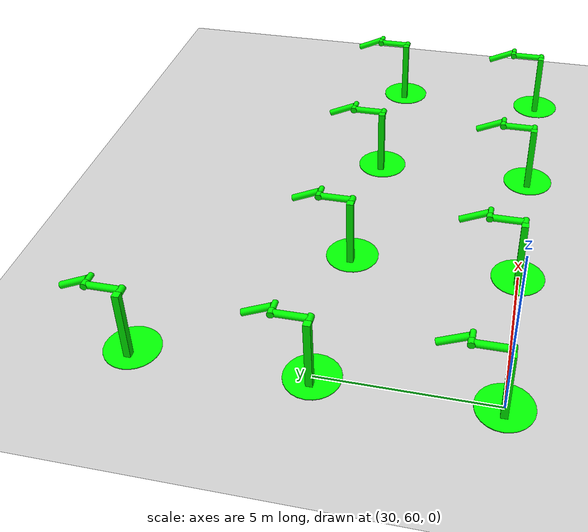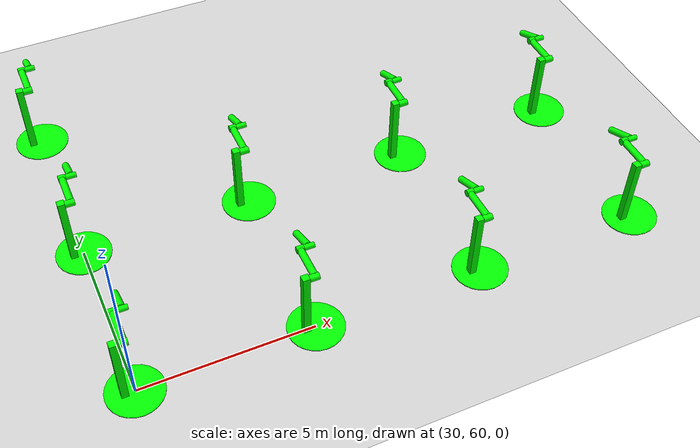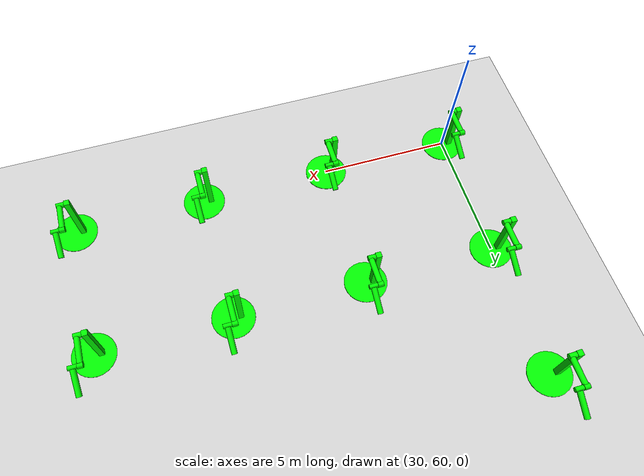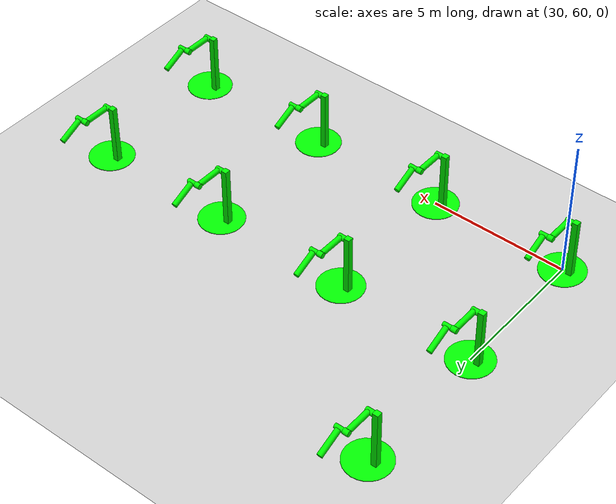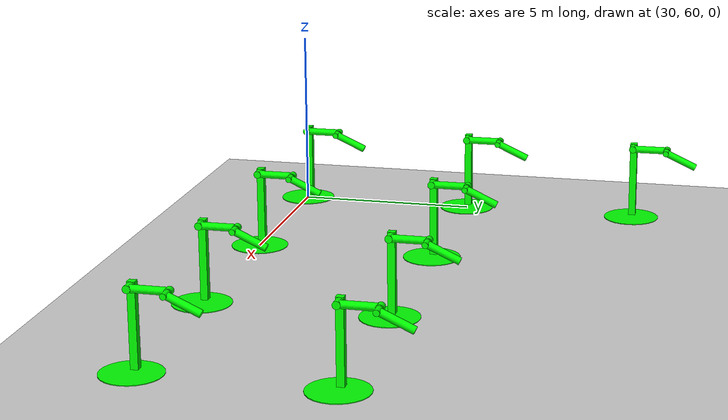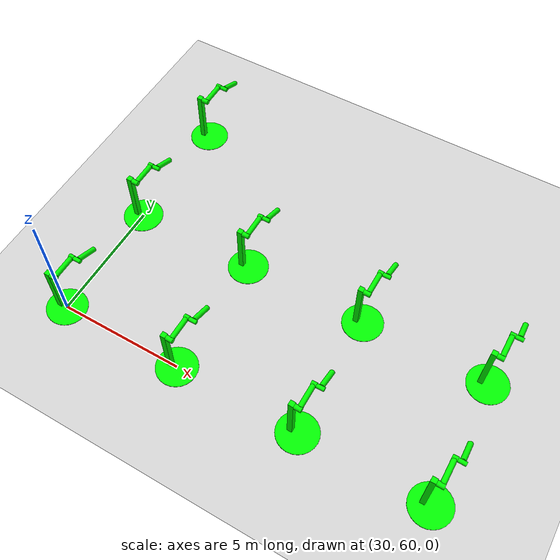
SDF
<sdf version="1.6">
 <world name="double_pendulums">
  <model name="ground_plane">
   <static>true</static>
   <link name="link">
    <collision name="collision">
     <geometry><plane><normal>0 0 1</normal><size>100 100</size></plane></geometry>
    </collision>
    <visual name="visual">
     <geometry><plane><normal>0 0 1</normal><size>100 100</size></plane></geometry>
     <material>
      <ambient>0.8 0.8 0.8 1</ambient>
      <diffuse>0.8 0.8 0.8 1</diffuse>
      <specular>0.8 0.8 0.8 1</specular>
     </material>
    </visual>
   </link>
  </model>
  <model name="dbl_pendulum_316">
   <pose>30 60 0 0 0 0</pose>
   <link name="base">
    <inertial><mass>100</mass></inertial>
    <visual name="vis_plate_on_ground">
     <pose>0 0 0.01 0 0 0</pose>
     <geometry><cylinder><radius>0.8</radius><length>0.02</length></cylinder></geometry>
     <material><ambient>0 1 0 1</ambient><diffuse>0 1 0 1</diffuse><specular>0 1 0 1</specular></material>
    </visual>
    <visual name="vis_pole">
     <pose>-0.275 0 1.1 0 0 0</pose>
     <geometry><box><size>0.2 0.2 2.2</size></box></geometry>
     <material><ambient>0 1 0 1</ambient><diffuse>0 1 0 1</diffuse><specular>0 1 0 1</specular></material>
    </visual>
    <collision name="col_plate_on_ground">
     <pose>0 0 0.01 0 0 0</pose>
     <geometry><cylinder><radius>0.8</radius><length>0.02</length></cylinder></geometry>
    </collision>
    <collision name="col_pole">
     <pose>-0.275 0 1.1 0 0 0</pose>
     <geometry><box><size>0.2 0.2 2.2</size></box></geometry>
    </collision>
   </link>
   <link name="upper_link">
    <pose>0 0 2.1 -1.5708 0 0</pose>
    <inertial><pose>0 0 0.5 0 0 0</pose></inertial>
    <visual name="vis_upper_joint">
     <pose>-0.05 0 0 0 1.5708 0</pose>
     <geometry><cylinder><radius>0.1</radius><length>0.3</length></cylinder></geometry>
     <material><ambient>0 1 0 1</ambient><diffuse>0 1 0 1</diffuse><specular>0 1 0 1</specular></material>
    </visual>
    <visual name="vis_lower_joint">
     <pose>0 0 1.0 0 1.5708 0</pose>
     <geometry><cylinder><radius>0.1</radius><length>0.2</length></cylinder></geometry>
     <material><ambient>0 1 0 1</ambient><diffuse>0 1 0 1</diffuse><specular>0 1 0 1</specular></material>
    </visual>
    <visual name="vis_cylinder">
     <pose>0 0 0.5 0 0 0</pose>
     <geometry><cylinder><radius>0.1</radius><length>0.9</length></cylinder></geometry>
     <material><ambient>0 1 0 1</ambient><diffuse>0 1 0 1</diffuse><specular>0 1 0 1</specular></material>
    </visual>
    <collision name="col_upper_joint">
     <pose>-0.05 0 0 0 1.5708 0</pose>
     <geometry><cylinder><radius>0.1</radius><length>0.3</length></cylinder></geometry>
    </collision>
    <collision name="col_lower_joint">
     <pose>0 0 1.0 0 1.5708 0</pose>
     <geometry><cylinder><radius>0.1</radius><length>0.2</length></cylinder></geometry>
    </collision>
    <collision name="col_cylinder">
     <pose>0 0 0.5 0 0 0</pose>
     <geometry><cylinder><radius>0.1</radius><length>0.9</length></cylinder></geometry>
    </collision>
   </link>
   <link name="lower_link">
    <pose>0.25 1.0 2.1 -2 0 0</pose>
    <inertial><pose>0 0 0.5 0 0 0</pose></inertial>
    <visual name="vis_lower_joint">
     <pose>0 0 0 0 1.5708 0</pose>
     <geometry><cylinder><radius>0.08</radius><length>0.3</length></cylinder></geometry>
     <material><ambient>0 1 0 1</ambient><diffuse>0 1 0 1</diffuse><specular>0 1 0 1</specular></material>
    </visual>
    <visual name="vis_cylinder">
     <pose>0 0 0.5 0 0 0</pose>
     <geometry><cylinder><radius>0.1</radius><length>0.9</length></cylinder></geometry>
     <material><ambient>0 1 0 1</ambient><diffuse>0 1 0 1</diffuse><specular>0 1 0 1</specular></material>
    </visual>
    <collision name="col_lower_joint">
     <pose>0 0 0 0 1.5708 0</pose>
     <geometry><cylinder><radius>0.08</radius><length>0.3</length></cylinder></geometry>
    </collision>
    <collision name="col_cylinder">
     <pose>0 0 0.5 0 0 0</pose>
     <geometry><cylinder><radius>0.1</radius><length>0.9</length></cylinder></geometry>
    </collision>
   </link>
   <joint name="upper_joint" type="revolute">
    <parent>base</parent>
    <child>upper_link</child>
    <axis><xyz>1.0 0 0</xyz></axis>
   </joint>
   <joint name="lower_joint" type="revolute">
    <parent>upper_link</parent>
    <child>lower_link</child>
    <axis><xyz>1.0 0 0</xyz></axis>
   </joint>
  </model>
  <model name="dbl_pendulum_317">
   <pose>35 60 0 0 0 0</pose>
   <link name="base">
    <inertial><mass>100</mass></inertial>
    <visual name="vis_plate_on_ground">
     <pose>0 0 0.01 0 0 0</pose>
     <geometry><cylinder><radius>0.8</radius><length>0.02</length></cylinder></geometry>
     <material><ambient>0 1 0 1</ambient><diffuse>0 1 0 1</diffuse><specular>0 1 0 1</specular></material>
    </visual>
    <visual name="vis_pole">
     <pose>-0.275 0 1.1 0 0 0</pose>
     <geometry><box><size>0.2 0.2 2.2</size></box></geometry>
     <material><ambient>0 1 0 1</ambient><diffuse>0 1 0 1</diffuse><specular>0 1 0 1</specular></material>
    </visual>
    <collision name="col_plate_on_ground">
     <pose>0 0 0.01 0 0 0</pose>
     <geometry><cylinder><radius>0.8</radius><length>0.02</length></cylinder></geometry>
    </collision>
    <collision name="col_pole">
     <pose>-0.275 0 1.1 0 0 0</pose>
     <geometry><box><size>0.2 0.2 2.2</size></box></geometry>
    </collision>
   </link>
   <link name="upper_link">
    <pose>0 0 2.1 -1.5708 0 0</pose>
    <inertial><pose>0 0 0.5 0 0 0</pose></inertial>
    <visual name="vis_upper_joint">
     <pose>-0.05 0 0 0 1.5708 0</pose>
     <geometry><cylinder><radius>0.1</radius><length>0.3</length></cylinder></geometry>
     <material><ambient>0 1 0 1</ambient><diffuse>0 1 0 1</diffuse><specular>0 1 0 1</specular></material>
    </visual>
    <visual name="vis_lower_joint">
     <pose>0 0 1.0 0 1.5708 0</pose>
     <geometry><cylinder><radius>0.1</radius><length>0.2</length></cylinder></geometry>
     <material><ambient>0 1 0 1</ambient><diffuse>0 1 0 1</diffuse><specular>0 1 0 1</specular></material>
    </visual>
    <visual name="vis_cylinder">
     <pose>0 0 0.5 0 0 0</pose>
     <geometry><cylinder><radius>0.1</radius><length>0.9</length></cylinder></geometry>
     <material><ambient>0 1 0 1</ambient><diffuse>0 1 0 1</diffuse><specular>0 1 0 1</specular></material>
    </visual>
    <collision name="col_upper_joint">
     <pose>-0.05 0 0 0 1.5708 0</pose>
     <geometry><cylinder><radius>0.1</radius><length>0.3</length></cylinder></geometry>
    </collision>
    <collision name="col_lower_joint">
     <pose>0 0 1.0 0 1.5708 0</pose>
     <geometry><cylinder><radius>0.1</radius><length>0.2</length></cylinder></geometry>
    </collision>
    <collision name="col_cylinder">
     <pose>0 0 0.5 0 0 0</pose>
     <geometry><cylinder><radius>0.1</radius><length>0.9</length></cylinder></geometry>
    </collision>
   </link>
   <link name="lower_link">
    <pose>0.25 1.0 2.1 -2 0 0</pose>
    <inertial><pose>0 0 0.5 0 0 0</pose></inertial>
    <visual name="vis_lower_joint">
     <pose>0 0 0 0 1.5708 0</pose>
     <geometry><cylinder><radius>0.08</radius><length>0.3</length></cylinder></geometry>
     <material><ambient>0 1 0 1</ambient><diffuse>0 1 0 1</diffuse><specular>0 1 0 1</specular></material>
    </visual>
    <visual name="vis_cylinder">
     <pose>0 0 0.5 0 0 0</pose>
     <geometry><cylinder><radius>0.1</radius><length>0.9</length></cylinder></geometry>
     <material><ambient>0 1 0 1</ambient><diffuse>0 1 0 1</diffuse><specular>0 1 0 1</specular></material>
    </visual>
    <collision name="col_lower_joint">
     <pose>0 0 0 0 1.5708 0</pose>
     <geometry><cylinder><radius>0.08</radius><length>0.3</length></cylinder></geometry>
    </collision>
    <collision name="col_cylinder">
     <pose>0 0 0.5 0 0 0</pose>
     <geometry><cylinder><radius>0.1</radius><length>0.9</length></cylinder></geometry>
    </collision>
   </link>
   <joint name="upper_joint" type="revolute">
    <parent>base</parent>
    <child>upper_link</child>
    <axis><xyz>1.0 0 0</xyz></axis>
   </joint>
   <joint name="lower_joint" type="revolute">
    <parent>upper_link</parent>
    <child>lower_link</child>
    <axis><xyz>1.0 0 0</xyz></axis>
   </joint>
  </model>
  <model name="dbl_pendulum_318">
   <pose>40 60 0 0 0 0</pose>
   <link name="base">
    <inertial><mass>100</mass></inertial>
    <visual name="vis_plate_on_ground">
     <pose>0 0 0.01 0 0 0</pose>
     <geometry><cylinder><radius>0.8</radius><length>0.02</length></cylinder></geometry>
     <material><ambient>0 1 0 1</ambient><diffuse>0 1 0 1</diffuse><specular>0 1 0 1</specular></material>
    </visual>
    <visual name="vis_pole">
     <pose>-0.275 0 1.1 0 0 0</pose>
     <geometry><box><size>0.2 0.2 2.2</size></box></geometry>
     <material><ambient>0 1 0 1</ambient><diffuse>0 1 0 1</diffuse><specular>0 1 0 1</specular></material>
    </visual>
    <collision name="col_plate_on_ground">
     <pose>0 0 0.01 0 0 0</pose>
     <geometry><cylinder><radius>0.8</radius><length>0.02</length></cylinder></geometry>
    </collision>
    <collision name="col_pole">
     <pose>-0.275 0 1.1 0 0 0</pose>
     <geometry><box><size>0.2 0.2 2.2</size></box></geometry>
    </collision>
   </link>
   <link name="upper_link">
    <pose>0 0 2.1 -1.5708 0 0</pose>
    <inertial><pose>0 0 0.5 0 0 0</pose></inertial>
    <visual name="vis_upper_joint">
     <pose>-0.05 0 0 0 1.5708 0</pose>
     <geometry><cylinder><radius>0.1</radius><length>0.3</length></cylinder></geometry>
     <material><ambient>0 1 0 1</ambient><diffuse>0 1 0 1</diffuse><specular>0 1 0 1</specular></material>
    </visual>
    <visual name="vis_lower_joint">
     <pose>0 0 1.0 0 1.5708 0</pose>
     <geometry><cylinder><radius>0.1</radius><length>0.2</length></cylinder></geometry>
     <material><ambient>0 1 0 1</ambient><diffuse>0 1 0 1</diffuse><specular>0 1 0 1</specular></material>
    </visual>
    <visual name="vis_cylinder">
     <pose>0 0 0.5 0 0 0</pose>
     <geometry><cylinder><radius>0.1</radius><length>0.9</length></cylinder></geometry>
     <material><ambient>0 1 0 1</ambient><diffuse>0 1 0 1</diffuse><specular>0 1 0 1</specular></material>
    </visual>
    <collision name="col_upper_joint">
     <pose>-0.05 0 0 0 1.5708 0</pose>
     <geometry><cylinder><radius>0.1</radius><length>0.3</length></cylinder></geometry>
    </collision>
    <collision name="col_lower_joint">
     <pose>0 0 1.0 0 1.5708 0</pose>
     <geometry><cylinder><radius>0.1</radius><length>0.2</length></cylinder></geometry>
    </collision>
    <collision name="col_cylinder">
     <pose>0 0 0.5 0 0 0</pose>
     <geometry><cylinder><radius>0.1</radius><length>0.9</length></cylinder></geometry>
    </collision>
   </link>
   <link name="lower_link">
    <pose>0.25 1.0 2.1 -2 0 0</pose>
    <inertial><pose>0 0 0.5 0 0 0</pose></inertial>
    <visual name="vis_lower_joint">
     <pose>0 0 0 0 1.5708 0</pose>
     <geometry><cylinder><radius>0.08</radius><length>0.3</length></cylinder></geometry>
     <material><ambient>0 1 0 1</ambient><diffuse>0 1 0 1</diffuse><specular>0 1 0 1</specular></material>
    </visual>
    <visual name="vis_cylinder">
     <pose>0 0 0.5 0 0 0</pose>
     <geometry><cylinder><radius>0.1</radius><length>0.9</length></cylinder></geometry>
     <material><ambient>0 1 0 1</ambient><diffuse>0 1 0 1</diffuse><specular>0 1 0 1</specular></material>
    </visual>
    <collision name="col_lower_joint">
     <pose>0 0 0 0 1.5708 0</pose>
     <geometry><cylinder><radius>0.08</radius><length>0.3</length></cylinder></geometry>
    </collision>
    <collision name="col_cylinder">
     <pose>0 0 0.5 0 0 0</pose>
     <geometry><cylinder><radius>0.1</radius><length>0.9</length></cylinder></geometry>
    </collision>
   </link>
   <joint name="upper_joint" type="revolute">
    <parent>base</parent>
    <child>upper_link</child>
    <axis><xyz>1.0 0 0</xyz></axis>
   </joint>
   <joint name="lower_joint" type="revolute">
    <parent>upper_link</parent>
    <child>lower_link</child>
    <axis><xyz>1.0 0 0</xyz></axis>
   </joint>
  </model>
  <model name="dbl_pendulum_319">
   <pose>45 60 0 0 0 0</pose>
   <link name="base">
    <inertial><mass>100</mass></inertial>
    <visual name="vis_plate_on_ground">
     <pose>0 0 0.01 0 0 0</pose>
     <geometry><cylinder><radius>0.8</radius><length>0.02</length></cylinder></geometry>
     <material><ambient>0 1 0 1</ambient><diffuse>0 1 0 1</diffuse><specular>0 1 0 1</specular></material>
    </visual>
    <visual name="vis_pole">
     <pose>-0.275 0 1.1 0 0 0</pose>
     <geometry><box><size>0.2 0.2 2.2</size></box></geometry>
     <material><ambient>0 1 0 1</ambient><diffuse>0 1 0 1</diffuse><specular>0 1 0 1</specular></material>
    </visual>
    <collision name="col_plate_on_ground">
     <pose>0 0 0.01 0 0 0</pose>
     <geometry><cylinder><radius>0.8</radius><length>0.02</length></cylinder></geometry>
    </collision>
    <collision name="col_pole">
     <pose>-0.275 0 1.1 0 0 0</pose>
     <geometry><box><size>0.2 0.2 2.2</size></box></geometry>
    </collision>
   </link>
   <link name="upper_link">
    <pose>0 0 2.1 -1.5708 0 0</pose>
    <inertial><pose>0 0 0.5 0 0 0</pose></inertial>
    <visual name="vis_upper_joint">
     <pose>-0.05 0 0 0 1.5708 0</pose>
     <geometry><cylinder><radius>0.1</radius><length>0.3</length></cylinder></geometry>
     <material><ambient>0 1 0 1</ambient><diffuse>0 1 0 1</diffuse><specular>0 1 0 1</specular></material>
    </visual>
    <visual name="vis_lower_joint">
     <pose>0 0 1.0 0 1.5708 0</pose>
     <geometry><cylinder><radius>0.1</radius><length>0.2</length></cylinder></geometry>
     <material><ambient>0 1 0 1</ambient><diffuse>0 1 0 1</diffuse><specular>0 1 0 1</specular></material>
    </visual>
    <visual name="vis_cylinder">
     <pose>0 0 0.5 0 0 0</pose>
     <geometry><cylinder><radius>0.1</radius><length>0.9</length></cylinder></geometry>
     <material><ambient>0 1 0 1</ambient><diffuse>0 1 0 1</diffuse><specular>0 1 0 1</specular></material>
    </visual>
    <collision name="col_upper_joint">
     <pose>-0.05 0 0 0 1.5708 0</pose>
     <geometry><cylinder><radius>0.1</radius><length>0.3</length></cylinder></geometry>
    </collision>
    <collision name="col_lower_joint">
     <pose>0 0 1.0 0 1.5708 0</pose>
     <geometry><cylinder><radius>0.1</radius><length>0.2</length></cylinder></geometry>
    </collision>
    <collision name="col_cylinder">
     <pose>0 0 0.5 0 0 0</pose>
     <geometry><cylinder><radius>0.1</radius><length>0.9</length></cylinder></geometry>
    </collision>
   </link>
   <link name="lower_link">
    <pose>0.25 1.0 2.1 -2 0 0</pose>
    <inertial><pose>0 0 0.5 0 0 0</pose></inertial>
    <visual name="vis_lower_joint">
     <pose>0 0 0 0 1.5708 0</pose>
     <geometry><cylinder><radius>0.08</radius><length>0.3</length></cylinder></geometry>
     <material><ambient>0 1 0 1</ambient><diffuse>0 1 0 1</diffuse><specular>0 1 0 1</specular></material>
    </visual>
    <visual name="vis_cylinder">
     <pose>0 0 0.5 0 0 0</pose>
     <geometry><cylinder><radius>0.1</radius><length>0.9</length></cylinder></geometry>
     <material><ambient>0 1 0 1</ambient><diffuse>0 1 0 1</diffuse><specular>0 1 0 1</specular></material>
    </visual>
    <collision name="col_lower_joint">
     <pose>0 0 0 0 1.5708 0</pose>
     <geometry><cylinder><radius>0.08</radius><length>0.3</length></cylinder></geometry>
    </collision>
    <collision name="col_cylinder">
     <pose>0 0 0.5 0 0 0</pose>
     <geometry><cylinder><radius>0.1</radius><length>0.9</length></cylinder></geometry>
    </collision>
   </link>
   <joint name="upper_joint" type="revolute">
    <parent>base</parent>
    <child>upper_link</child>
    <axis><xyz>1.0 0 0</xyz></axis>
   </joint>
   <joint name="lower_joint" type="revolute">
    <parent>upper_link</parent>
    <child>lower_link</child>
    <axis><xyz>1.0 0 0</xyz></axis>
   </joint>
  </model>
  <model name="dbl_pendulum_341">
   <pose>30 65 0 0 0 0</pose>
   <link name="base">
    <inertial><mass>100</mass></inertial>
    <visual name="vis_plate_on_ground">
     <pose>0 0 0.01 0 0 0</pose>
     <geometry><cylinder><radius>0.8</radius><length>0.02</length></cylinder></geometry>
     <material><ambient>0 1 0 1</ambient><diffuse>0 1 0 1</diffuse><specular>0 1 0 1</specular></material>
    </visual>
    <visual name="vis_pole">
     <pose>-0.275 0 1.1 0 0 0</pose>
     <geometry><box><size>0.2 0.2 2.2</size></box></geometry>
     <material><ambient>0 1 0 1</ambient><diffuse>0 1 0 1</diffuse><specular>0 1 0 1</specular></material>
    </visual>
    <collision name="col_plate_on_ground">
     <pose>0 0 0.01 0 0 0</pose>
     <geometry><cylinder><radius>0.8</radius><length>0.02</length></cylinder></geometry>
    </collision>
    <collision name="col_pole">
     <pose>-0.275 0 1.1 0 0 0</pose>
     <geometry><box><size>0.2 0.2 2.2</size></box></geometry>
    </collision>
   </link>
   <link name="upper_link">
    <pose>0 0 2.1 -1.5708 0 0</pose>
    <inertial><pose>0 0 0.5 0 0 0</pose></inertial>
    <visual name="vis_upper_joint">
     <pose>-0.05 0 0 0 1.5708 0</pose>
     <geometry><cylinder><radius>0.1</radius><length>0.3</length></cylinder></geometry>
     <material><ambient>0 1 0 1</ambient><diffuse>0 1 0 1</diffuse><specular>0 1 0 1</specular></material>
    </visual>
    <visual name="vis_lower_joint">
     <pose>0 0 1.0 0 1.5708 0</pose>
     <geometry><cylinder><radius>0.1</radius><length>0.2</length></cylinder></geometry>
     <material><ambient>0 1 0 1</ambient><diffuse>0 1 0 1</diffuse><specular>0 1 0 1</specular></material>
    </visual>
    <visual name="vis_cylinder">
     <pose>0 0 0.5 0 0 0</pose>
     <geometry><cylinder><radius>0.1</radius><length>0.9</length></cylinder></geometry>
     <material><ambient>0 1 0 1</ambient><diffuse>0 1 0 1</diffuse><specular>0 1 0 1</specular></material>
    </visual>
    <collision name="col_upper_joint">
     <pose>-0.05 0 0 0 1.5708 0</pose>
     <geometry><cylinder><radius>0.1</radius><length>0.3</length></cylinder></geometry>
    </collision>
    <collision name="col_lower_joint">
     <pose>0 0 1.0 0 1.5708 0</pose>
     <geometry><cylinder><radius>0.1</radius><length>0.2</length></cylinder></geometry>
    </collision>
    <collision name="col_cylinder">
     <pose>0 0 0.5 0 0 0</pose>
     <geometry><cylinder><radius>0.1</radius><length>0.9</length></cylinder></geometry>
    </collision>
   </link>
   <link name="lower_link">
    <pose>0.25 1.0 2.1 -2 0 0</pose>
    <inertial><pose>0 0 0.5 0 0 0</pose></inertial>
    <visual name="vis_lower_joint">
     <pose>0 0 0 0 1.5708 0</pose>
     <geometry><cylinder><radius>0.08</radius><length>0.3</length></cylinder></geometry>
     <material><ambient>0 1 0 1</ambient><diffuse>0 1 0 1</diffuse><specular>0 1 0 1</specular></material>
    </visual>
    <visual name="vis_cylinder">
     <pose>0 0 0.5 0 0 0</pose>
     <geometry><cylinder><radius>0.1</radius><length>0.9</length></cylinder></geometry>
     <material><ambient>0 1 0 1</ambient><diffuse>0 1 0 1</diffuse><specular>0 1 0 1</specular></material>
    </visual>
    <collision name="col_lower_joint">
     <pose>0 0 0 0 1.5708 0</pose>
     <geometry><cylinder><radius>0.08</radius><length>0.3</length></cylinder></geometry>
    </collision>
    <collision name="col_cylinder">
     <pose>0 0 0.5 0 0 0</pose>
     <geometry><cylinder><radius>0.1</radius><length>0.9</length></cylinder></geometry>
    </collision>
   </link>
   <joint name="upper_joint" type="revolute">
    <parent>base</parent>
    <child>upper_link</child>
    <axis><xyz>1.0 0 0</xyz></axis>
   </joint>
   <joint name="lower_joint" type="revolute">
    <parent>upper_link</parent>
    <child>lower_link</child>
    <axis><xyz>1.0 0 0</xyz></axis>
   </joint>
  </model>
  <model name="dbl_pendulum_342">
   <pose>35 65 0 0 0 0</pose>
   <link name="base">
    <inertial><mass>100</mass></inertial>
    <visual name="vis_plate_on_ground">
     <pose>0 0 0.01 0 0 0</pose>
     <geometry><cylinder><radius>0.8</radius><length>0.02</length></cylinder></geometry>
     <material><ambient>0 1 0 1</ambient><diffuse>0 1 0 1</diffuse><specular>0 1 0 1</specular></material>
    </visual>
    <visual name="vis_pole">
     <pose>-0.275 0 1.1 0 0 0</pose>
     <geometry><box><size>0.2 0.2 2.2</size></box></geometry>
     <material><ambient>0 1 0 1</ambient><diffuse>0 1 0 1</diffuse><specular>0 1 0 1</specular></material>
    </visual>
    <collision name="col_plate_on_ground">
     <pose>0 0 0.01 0 0 0</pose>
     <geometry><cylinder><radius>0.8</radius><length>0.02</length></cylinder></geometry>
    </collision>
    <collision name="col_pole">
     <pose>-0.275 0 1.1 0 0 0</pose>
     <geometry><box><size>0.2 0.2 2.2</size></box></geometry>
    </collision>
   </link>
   <link name="upper_link">
    <pose>0 0 2.1 -1.5708 0 0</pose>
    <inertial><pose>0 0 0.5 0 0 0</pose></inertial>
    <visual name="vis_upper_joint">
     <pose>-0.05 0 0 0 1.5708 0</pose>
     <geometry><cylinder><radius>0.1</radius><length>0.3</length></cylinder></geometry>
     <material><ambient>0 1 0 1</ambient><diffuse>0 1 0 1</diffuse><specular>0 1 0 1</specular></material>
    </visual>
    <visual name="vis_lower_joint">
     <pose>0 0 1.0 0 1.5708 0</pose>
     <geometry><cylinder><radius>0.1</radius><length>0.2</length></cylinder></geometry>
     <material><ambient>0 1 0 1</ambient><diffuse>0 1 0 1</diffuse><specular>0 1 0 1</specular></material>
    </visual>
    <visual name="vis_cylinder">
     <pose>0 0 0.5 0 0 0</pose>
     <geometry><cylinder><radius>0.1</radius><length>0.9</length></cylinder></geometry>
     <material><ambient>0 1 0 1</ambient><diffuse>0 1 0 1</diffuse><specular>0 1 0 1</specular></material>
    </visual>
    <collision name="col_upper_joint">
     <pose>-0.05 0 0 0 1.5708 0</pose>
     <geometry><cylinder><radius>0.1</radius><length>0.3</length></cylinder></geometry>
    </collision>
    <collision name="col_lower_joint">
     <pose>0 0 1.0 0 1.5708 0</pose>
     <geometry><cylinder><radius>0.1</radius><length>0.2</length></cylinder></geometry>
    </collision>
    <collision name="col_cylinder">
     <pose>0 0 0.5 0 0 0</pose>
     <geometry><cylinder><radius>0.1</radius><length>0.9</length></cylinder></geometry>
    </collision>
   </link>
   <link name="lower_link">
    <pose>0.25 1.0 2.1 -2 0 0</pose>
    <inertial><pose>0 0 0.5 0 0 0</pose></inertial>
    <visual name="vis_lower_joint">
     <pose>0 0 0 0 1.5708 0</pose>
     <geometry><cylinder><radius>0.08</radius><length>0.3</length></cylinder></geometry>
     <material><ambient>0 1 0 1</ambient><diffuse>0 1 0 1</diffuse><specular>0 1 0 1</specular></material>
    </visual>
    <visual name="vis_cylinder">
     <pose>0 0 0.5 0 0 0</pose>
     <geometry><cylinder><radius>0.1</radius><length>0.9</length></cylinder></geometry>
     <material><ambient>0 1 0 1</ambient><diffuse>0 1 0 1</diffuse><specular>0 1 0 1</specular></material>
    </visual>
    <collision name="col_lower_joint">
     <pose>0 0 0 0 1.5708 0</pose>
     <geometry><cylinder><radius>0.08</radius><length>0.3</length></cylinder></geometry>
    </collision>
    <collision name="col_cylinder">
     <pose>0 0 0.5 0 0 0</pose>
     <geometry><cylinder><radius>0.1</radius><length>0.9</length></cylinder></geometry>
    </collision>
   </link>
   <joint name="upper_joint" type="revolute">
    <parent>base</parent>
    <child>upper_link</child>
    <axis><xyz>1.0 0 0</xyz></axis>
   </joint>
   <joint name="lower_joint" type="revolute">
    <parent>upper_link</parent>
    <child>lower_link</child>
    <axis><xyz>1.0 0 0</xyz></axis>
   </joint>
  </model>
  <model name="dbl_pendulum_343">
   <pose>40 65 0 0 0 0</pose>
   <link name="base">
    <inertial><mass>100</mass></inertial>
    <visual name="vis_plate_on_ground">
     <pose>0 0 0.01 0 0 0</pose>
     <geometry><cylinder><radius>0.8</radius><length>0.02</length></cylinder></geometry>
     <material><ambient>0 1 0 1</ambient><diffuse>0 1 0 1</diffuse><specular>0 1 0 1</specular></material>
    </visual>
    <visual name="vis_pole">
     <pose>-0.275 0 1.1 0 0 0</pose>
     <geometry><box><size>0.2 0.2 2.2</size></box></geometry>
     <material><ambient>0 1 0 1</ambient><diffuse>0 1 0 1</diffuse><specular>0 1 0 1</specular></material>
    </visual>
    <collision name="col_plate_on_ground">
     <pose>0 0 0.01 0 0 0</pose>
     <geometry><cylinder><radius>0.8</radius><length>0.02</length></cylinder></geometry>
    </collision>
    <collision name="col_pole">
     <pose>-0.275 0 1.1 0 0 0</pose>
     <geometry><box><size>0.2 0.2 2.2</size></box></geometry>
    </collision>
   </link>
   <link name="upper_link">
    <pose>0 0 2.1 -1.5708 0 0</pose>
    <inertial><pose>0 0 0.5 0 0 0</pose></inertial>
    <visual name="vis_upper_joint">
     <pose>-0.05 0 0 0 1.5708 0</pose>
     <geometry><cylinder><radius>0.1</radius><length>0.3</length></cylinder></geometry>
     <material><ambient>0 1 0 1</ambient><diffuse>0 1 0 1</diffuse><specular>0 1 0 1</specular></material>
    </visual>
    <visual name="vis_lower_joint">
     <pose>0 0 1.0 0 1.5708 0</pose>
     <geometry><cylinder><radius>0.1</radius><length>0.2</length></cylinder></geometry>
     <material><ambient>0 1 0 1</ambient><diffuse>0 1 0 1</diffuse><specular>0 1 0 1</specular></material>
    </visual>
    <visual name="vis_cylinder">
     <pose>0 0 0.5 0 0 0</pose>
     <geometry><cylinder><radius>0.1</radius><length>0.9</length></cylinder></geometry>
     <material><ambient>0 1 0 1</ambient><diffuse>0 1 0 1</diffuse><specular>0 1 0 1</specular></material>
    </visual>
    <collision name="col_upper_joint">
     <pose>-0.05 0 0 0 1.5708 0</pose>
     <geometry><cylinder><radius>0.1</radius><length>0.3</length></cylinder></geometry>
    </collision>
    <collision name="col_lower_joint">
     <pose>0 0 1.0 0 1.5708 0</pose>
     <geometry><cylinder><radius>0.1</radius><length>0.2</length></cylinder></geometry>
    </collision>
    <collision name="col_cylinder">
     <pose>0 0 0.5 0 0 0</pose>
     <geometry><cylinder><radius>0.1</radius><length>0.9</length></cylinder></geometry>
    </collision>
   </link>
   <link name="lower_link">
    <pose>0.25 1.0 2.1 -2 0 0</pose>
    <inertial><pose>0 0 0.5 0 0 0</pose></inertial>
    <visual name="vis_lower_joint">
     <pose>0 0 0 0 1.5708 0</pose>
     <geometry><cylinder><radius>0.08</radius><length>0.3</length></cylinder></geometry>
     <material><ambient>0 1 0 1</ambient><diffuse>0 1 0 1</diffuse><specular>0 1 0 1</specular></material>
    </visual>
    <visual name="vis_cylinder">
     <pose>0 0 0.5 0 0 0</pose>
     <geometry><cylinder><radius>0.1</radius><length>0.9</length></cylinder></geometry>
     <material><ambient>0 1 0 1</ambient><diffuse>0 1 0 1</diffuse><specular>0 1 0 1</specular></material>
    </visual>
    <collision name="col_lower_joint">
     <pose>0 0 0 0 1.5708 0</pose>
     <geometry><cylinder><radius>0.08</radius><length>0.3</length></cylinder></geometry>
    </collision>
    <collision name="col_cylinder">
     <pose>0 0 0.5 0 0 0</pose>
     <geometry><cylinder><radius>0.1</radius><length>0.9</length></cylinder></geometry>
    </collision>
   </link>
   <joint name="upper_joint" type="revolute">
    <parent>base</parent>
    <child>upper_link</child>
    <axis><xyz>1.0 0 0</xyz></axis>
   </joint>
   <joint name="lower_joint" type="revolute">
    <parent>upper_link</parent>
    <child>lower_link</child>
    <axis><xyz>1.0 0 0</xyz></axis>
   </joint>
  </model>
  <model name="dbl_pendulum_344">
   <pose>45 65 0 0 0 0</pose>
   <link name="base">
    <inertial><mass>100</mass></inertial>
    <visual name="vis_plate_on_ground">
     <pose>0 0 0.01 0 0 0</pose>
     <geometry><cylinder><radius>0.8</radius><length>0.02</length></cylinder></geometry>
     <material><ambient>0 1 0 1</ambient><diffuse>0 1 0 1</diffuse><specular>0 1 0 1</specular></material>
    </visual>
    <visual name="vis_pole">
     <pose>-0.275 0 1.1 0 0 0</pose>
     <geometry><box><size>0.2 0.2 2.2</size></box></geometry>
     <material><ambient>0 1 0 1</ambient><diffuse>0 1 0 1</diffuse><specular>0 1 0 1</specular></material>
    </visual>
    <collision name="col_plate_on_ground">
     <pose>0 0 0.01 0 0 0</pose>
     <geometry><cylinder><radius>0.8</radius><length>0.02</length></cylinder></geometry>
    </collision>
    <collision name="col_pole">
     <pose>-0.275 0 1.1 0 0 0</pose>
     <geometry><box><size>0.2 0.2 2.2</size></box></geometry>
    </collision>
   </link>
   <link name="upper_link">
    <pose>0 0 2.1 -1.5708 0 0</pose>
    <inertial><pose>0 0 0.5 0 0 0</pose></inertial>
    <visual name="vis_upper_joint">
     <pose>-0.05 0 0 0 1.5708 0</pose>
     <geometry><cylinder><radius>0.1</radius><length>0.3</length></cylinder></geometry>
     <material><ambient>0 1 0 1</ambient><diffuse>0 1 0 1</diffuse><specular>0 1 0 1</specular></material>
    </visual>
    <visual name="vis_lower_joint">
     <pose>0 0 1.0 0 1.5708 0</pose>
     <geometry><cylinder><radius>0.1</radius><length>0.2</length></cylinder></geometry>
     <material><ambient>0 1 0 1</ambient><diffuse>0 1 0 1</diffuse><specular>0 1 0 1</specular></material>
    </visual>
    <visual name="vis_cylinder">
     <pose>0 0 0.5 0 0 0</pose>
     <geometry><cylinder><radius>0.1</radius><length>0.9</length></cylinder></geometry>
     <material><ambient>0 1 0 1</ambient><diffuse>0 1 0 1</diffuse><specular>0 1 0 1</specular></material>
    </visual>
    <collision name="col_upper_joint">
     <pose>-0.05 0 0 0 1.5708 0</pose>
     <geometry><cylinder><radius>0.1</radius><length>0.3</length></cylinder></geometry>
    </collision>
    <collision name="col_lower_joint">
     <pose>0 0 1.0 0 1.5708 0</pose>
     <geometry><cylinder><radius>0.1</radius><length>0.2</length></cylinder></geometry>
    </collision>
    <collision name="col_cylinder">
     <pose>0 0 0.5 0 0 0</pose>
     <geometry><cylinder><radius>0.1</radius><length>0.9</length></cylinder></geometry>
    </collision>
   </link>
   <link name="lower_link">
    <pose>0.25 1.0 2.1 -2 0 0</pose>
    <inertial><pose>0 0 0.5 0 0 0</pose></inertial>
    <visual name="vis_lower_joint">
     <pose>0 0 0 0 1.5708 0</pose>
     <geometry><cylinder><radius>0.08</radius><length>0.3</length></cylinder></geometry>
     <material><ambient>0 1 0 1</ambient><diffuse>0 1 0 1</diffuse><specular>0 1 0 1</specular></material>
    </visual>
    <visual name="vis_cylinder">
     <pose>0 0 0.5 0 0 0</pose>
     <geometry><cylinder><radius>0.1</radius><length>0.9</length></cylinder></geometry>
     <material><ambient>0 1 0 1</ambient><diffuse>0 1 0 1</diffuse><specular>0 1 0 1</specular></material>
    </visual>
    <collision name="col_lower_joint">
     <pose>0 0 0 0 1.5708 0</pose>
     <geometry><cylinder><radius>0.08</radius><length>0.3</length></cylinder></geometry>
    </collision>
    <collision name="col_cylinder">
     <pose>0 0 0.5 0 0 0</pose>
     <geometry><cylinder><radius>0.1</radius><length>0.9</length></cylinder></geometry>
    </collision>
   </link>
   <joint name="upper_joint" type="revolute">
    <parent>base</parent>
    <child>upper_link</child>
    <axis><xyz>1.0 0 0</xyz></axis>
   </joint>
   <joint name="lower_joint" type="revolute">
    <parent>upper_link</parent>
    <child>lower_link</child>
    <axis><xyz>1.0 0 0</xyz></axis>
   </joint>
  </model>
  <model name="dbl_pendulum_366">
   <pose>30 70 0 0 0 0</pose>
   <link name="base">
    <inertial><mass>100</mass></inertial>
    <visual name="vis_plate_on_ground">
     <pose>0 0 0.01 0 0 0</pose>
     <geometry><cylinder><radius>0.8</radius><length>0.02</length></cylinder></geometry>
     <material><ambient>0 1 0 1</ambient><diffuse>0 1 0 1</diffuse><specular>0 1 0 1</specular></material>
    </visual>
    <visual name="vis_pole">
     <pose>-0.275 0 1.1 0 0 0</pose>
     <geometry><box><size>0.2 0.2 2.2</size></box></geometry>
     <material><ambient>0 1 0 1</ambient><diffuse>0 1 0 1</diffuse><specular>0 1 0 1</specular></material>
    </visual>
    <collision name="col_plate_on_ground">
     <pose>0 0 0.01 0 0 0</pose>
     <geometry><cylinder><radius>0.8</radius><length>0.02</length></cylinder></geometry>
    </collision>
    <collision name="col_pole">
     <pose>-0.275 0 1.1 0 0 0</pose>
     <geometry><box><size>0.2 0.2 2.2</size></box></geometry>
    </collision>
   </link>
   <link name="upper_link">
    <pose>0 0 2.1 -1.5708 0 0</pose>
    <inertial><pose>0 0 0.5 0 0 0</pose></inertial>
    <visual name="vis_upper_joint">
     <pose>-0.05 0 0 0 1.5708 0</pose>
     <geometry><cylinder><radius>0.1</radius><length>0.3</length></cylinder></geometry>
     <material><ambient>0 1 0 1</ambient><diffuse>0 1 0 1</diffuse><specular>0 1 0 1</specular></material>
    </visual>
    <visual name="vis_lower_joint">
     <pose>0 0 1.0 0 1.5708 0</pose>
     <geometry><cylinder><radius>0.1</radius><length>0.2</length></cylinder></geometry>
     <material><ambient>0 1 0 1</ambient><diffuse>0 1 0 1</diffuse><specular>0 1 0 1</specular></material>
    </visual>
    <visual name="vis_cylinder">
     <pose>0 0 0.5 0 0 0</pose>
     <geometry><cylinder><radius>0.1</radius><length>0.9</length></cylinder></geometry>
     <material><ambient>0 1 0 1</ambient><diffuse>0 1 0 1</diffuse><specular>0 1 0 1</specular></material>
    </visual>
    <collision name="col_upper_joint">
     <pose>-0.05 0 0 0 1.5708 0</pose>
     <geometry><cylinder><radius>0.1</radius><length>0.3</length></cylinder></geometry>
    </collision>
    <collision name="col_lower_joint">
     <pose>0 0 1.0 0 1.5708 0</pose>
     <geometry><cylinder><radius>0.1</radius><length>0.2</length></cylinder></geometry>
    </collision>
    <collision name="col_cylinder">
     <pose>0 0 0.5 0 0 0</pose>
     <geometry><cylinder><radius>0.1</radius><length>0.9</length></cylinder></geometry>
    </collision>
   </link>
   <link name="lower_link">
    <pose>0.25 1.0 2.1 -2 0 0</pose>
    <inertial><pose>0 0 0.5 0 0 0</pose></inertial>
    <visual name="vis_lower_joint">
     <pose>0 0 0 0 1.5708 0</pose>
     <geometry><cylinder><radius>0.08</radius><length>0.3</length></cylinder></geometry>
     <material><ambient>0 1 0 1</ambient><diffuse>0 1 0 1</diffuse><specular>0 1 0 1</specular></material>
    </visual>
    <visual name="vis_cylinder">
     <pose>0 0 0.5 0 0 0</pose>
     <geometry><cylinder><radius>0.1</radius><length>0.9</length></cylinder></geometry>
     <material><ambient>0 1 0 1</ambient><diffuse>0 1 0 1</diffuse><specular>0 1 0 1</specular></material>
    </visual>
    <collision name="col_lower_joint">
     <pose>0 0 0 0 1.5708 0</pose>
     <geometry><cylinder><radius>0.08</radius><length>0.3</length></cylinder></geometry>
    </collision>
    <collision name="col_cylinder">
     <pose>0 0 0.5 0 0 0</pose>
     <geometry><cylinder><radius>0.1</radius><length>0.9</length></cylinder></geometry>
    </collision>
   </link>
   <joint name="upper_joint" type="revolute">
    <parent>base</parent>
    <child>upper_link</child>
    <axis><xyz>1.0 0 0</xyz></axis>
   </joint>
   <joint name="lower_joint" type="revolute">
    <parent>upper_link</parent>
    <child>lower_link</child>
    <axis><xyz>1.0 0 0</xyz></axis>
   </joint>
  </model>
 </world>
</sdf>
